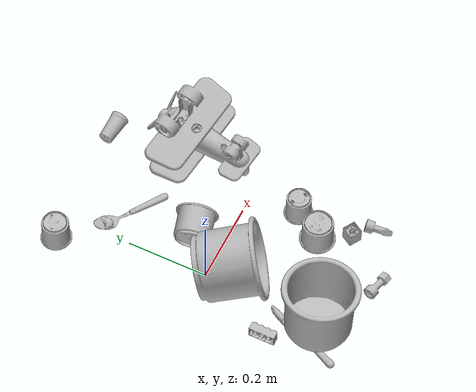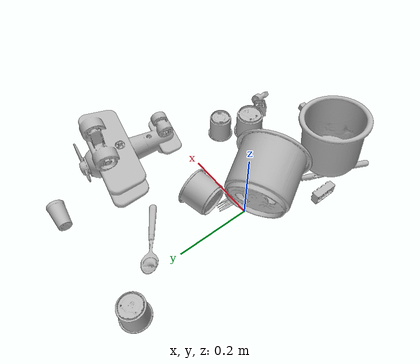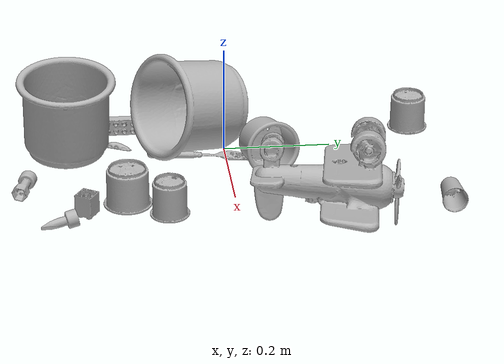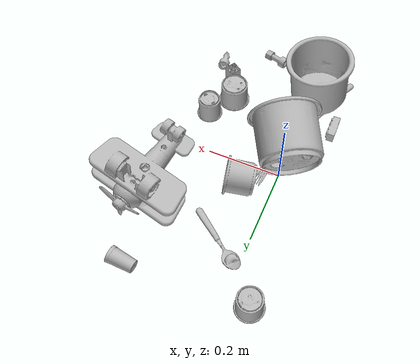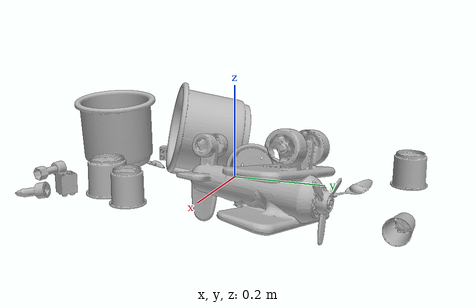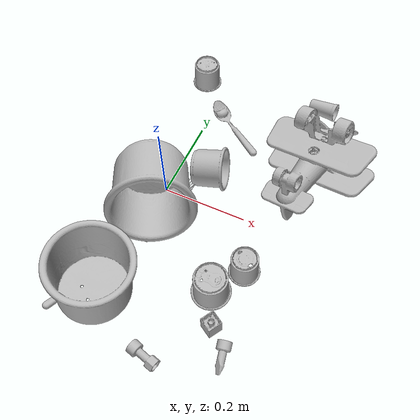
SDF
<sdf version="1.4">
  <world name="default">
    <light name="light1" type="point">
      <pose>0 0 1 0 0 0</pose>
      <diffuse>3 3 3 1</diffuse>
      <specular>3 3 3 1</specular>
    </light>
    <light name="light2" type="point">
      <pose>0 0.5 2 0 0 0</pose>
      <diffuse>1 1 1 1</diffuse>
      <specular>1 1 1 1</specular>
    </light>
    <light name="light3" type="point">
      <pose>0 0.5 2 0 0 0</pose>
      <diffuse>3 3 3 1</diffuse>
      <specular>3 3 3 1</specular>
    </light>
    <scene>
      <ambient>0.7 0.7 0.7</ambient>
    </scene>
    <model name="cup1">
      <link name="link_cup1">
        <collision name="default">
          <geometry>
            <mesh>
              <uri>model://d_cups/collision_meshes/collision.obj</uri>
              <scale>1.0 1.0 1.0</scale>
            </mesh>
          </geometry>
          <surface>
            <friction>
              <ode>
                <mu>0.5</mu>
                <mu2>0.5</mu2>
              </ode>
            </friction>
          <contact>
        <ode>
            <max_vel>0</max_vel>
            <min_depth>0.0001</min_depth>
            <kp>1e8</kp>
        </ode>
    </contact></surface>
        </collision>
        <visual name="default">
          <geometry>
            <mesh>
              <uri>model://d_cups/visual_meshes/visual.dae</uri>
              <scale>1.0 1.0 1.0</scale>
            </mesh>
          </geometry>
        </visual>
        <inertial>
          <mass>0.02583918906748295</mass>
          <pose>0.0008068039314821362 0.001911739120259881 -0.0022666507866233587 0.24011637128749466 -0.2471028358176743 0.5942765290496752</pose>
          <inertia>
            <ixx>2.1633481e-05</ixx>
            <iyy>2.1570875e-05</iyy>
            <izz>1.9581978e-05</izz>
            <ixy>0</ixy>
            <ixz>0</ixz>
            <iyz>0</iyz>
          </inertia>
        </inertial>
      </link>
      <pose>0.25356706976890564 -0.1207321286201477 0.034489043056964874 -3.1415925844150823 1.1045935714731804e-07 0.03815041691157113</pose>
    </model>
    <model name="silverware1">
      <link name="link_silverware1">
        <collision name="default">
          <geometry>
            <mesh>
              <uri>model://fork/collision_meshes/collision.obj</uri>
              <scale>1.0 1.0 1.0</scale>
            </mesh>
          </geometry>
          <surface>
            <friction>
              <ode>
                <mu>0.5</mu>
                <mu2>0.5</mu2>
              </ode>
            </friction>
          <contact>
        <ode>
            <max_vel>0</max_vel>
            <min_depth>0.0001</min_depth>
            <kp>1e8</kp>
        </ode>
    </contact></surface>
        </collision>
        <visual name="default">
          <geometry>
            <mesh>
              <uri>model://fork/visual_meshes/visual.dae</uri>
              <scale>1.0 1.0 1.0</scale>
            </mesh>
          </geometry>
        </visual>
        <inertial>
          <mass>0.019409121945500374</mass>
          <pose>-0.02957003004848957 0.00046588227269239724 0.0003218860365450382 -0.013551247621251511 -0.010977829980421018 0.014453895491116085</pose>
          <inertia>
            <ixx>6.8039935e-07</ixx>
            <iyy>5.0671635e-05</iyy>
            <izz>5.097597e-05</izz>
            <ixy>0</ixy>
            <ixz>0</ixz>
            <iyz>0</iyz>
          </inertia>
        </inertial>
      </link>
      <pose>0.03417261689901352 -0.04852315038442612 0.007466588169336319 -3.0564494965646913 0.0024867255677640645 1.4449140223659491</pose>
    </model>
    <model name="cup2">
      <link name="link_cup2">
        <collision name="default">
          <geometry>
            <mesh>
              <uri>model://e_cups/collision_meshes/collision.obj</uri>
              <scale>1.0 1.0 1.0</scale>
            </mesh>
          </geometry>
          <surface>
            <friction>
              <ode>
                <mu>0.5</mu>
                <mu2>0.5</mu2>
              </ode>
            </friction>
          <contact>
        <ode>
            <max_vel>0</max_vel>
            <min_depth>0.0001</min_depth>
            <kp>1e8</kp>
        </ode>
    </contact></surface>
        </collision>
        <visual name="default">
          <geometry>
            <mesh>
              <uri>model://e_cups/visual_meshes/visual.dae</uri>
              <scale>1.0 1.0 1.0</scale>
            </mesh>
          </geometry>
        </visual>
        <inertial>
          <mass>0.044056184589862823</mass>
          <pose>0.0011355748865753412 0.0028797839768230915 -0.0038829699624329805 0.6952404811842238 0.0876797234541652 -0.5235249298074676</pose>
          <inertia>
            <ixx>3.8846523e-05</ixx>
            <iyy>4.060018e-05</iyy>
            <izz>3.714177e-05</izz>
            <ixy>0</ixy>
            <ixz>0</ixz>
            <iyz>0</iyz>
          </inertia>
        </inertial>
      </link>
      <pose>-0.06153060495853424 0.36205992102622986 0.03560689836740494 3.1396969571821343 0.008252245408900176 0.12308820837378699</pose>
    </model>
    <model name="silverware2">
      <link name="link_silverware2">
        <collision name="default">
          <geometry>
            <mesh>
              <uri>model://knife/collision_meshes/collision.obj</uri>
              <scale>1.0 1.0 1.0</scale>
            </mesh>
          </geometry>
          <surface>
            <friction>
              <ode>
                <mu>0.5</mu>
                <mu2>0.5</mu2>
              </ode>
            </friction>
          <contact>
        <ode>
            <max_vel>0</max_vel>
            <min_depth>0.0001</min_depth>
            <kp>1e8</kp>
        </ode>
    </contact></surface>
        </collision>
        <visual name="default">
          <geometry>
            <mesh>
              <uri>model://knife/visual_meshes/visual.dae</uri>
              <scale>1.0 1.0 1.0</scale>
            </mesh>
          </geometry>
        </visual>
        <inertial>
          <mass>0.018338654190301895</mass>
          <pose>-0.02378525212407112 0.00152751209679991 5.062017953605391e-05 0.07305878484845407 0.017248414361503102 -0.007409825003193847</pose>
          <inertia>
            <ixx>5.2052525e-07</ixx>
            <iyy>7.045415e-05</iyy>
            <izz>7.062178e-05</izz>
            <ixy>0</ixy>
            <ixz>0</ixz>
            <iyz>0</iyz>
          </inertia>
        </inertial>
      </link>
      <pose>-0.0524384081363678 -0.2720654308795929 0.006001495756208897 3.014176916032006 0.03321998448416552 1.1662007052050238</pose>
    </model>
    <model name="cup3">
      <link name="link_cup3">
        <collision name="default">
          <geometry>
            <mesh>
              <uri>model://g_cups/collision_meshes/collision.obj</uri>
              <scale>1.0 1.0 1.0</scale>
            </mesh>
          </geometry>
          <surface>
            <friction>
              <ode>
                <mu>0.5</mu>
                <mu2>0.5</mu2>
              </ode>
            </friction>
          <contact>
        <ode>
            <max_vel>0</max_vel>
            <min_depth>0.0001</min_depth>
            <kp>1e8</kp>
        </ode>
    </contact></surface>
        </collision>
        <visual name="default">
          <geometry>
            <mesh>
              <uri>model://g_cups/visual_meshes/visual.dae</uri>
              <scale>1.0 1.0 1.0</scale>
            </mesh>
          </geometry>
        </visual>
        <inertial>
          <mass>0.07798270881175995</mass>
          <pose>-0.0007946274126879871 -4.206407902529463e-05 -0.0021329382434487343 -0.21383467808934026 -0.31409923984197585 0.31123390815877217</pose>
          <inertia>
            <ixx>9.102333e-05</ixx>
            <iyy>9.0713715e-05</iyy>
            <izz>9.428446e-05</izz>
            <ixy>0</ixy>
            <ixz>0</ixz>
            <iyz>0</iyz>
          </inertia>
        </inertial>
      </link>
      <pose>0.20759601891040802 -0.19174373149871826 0.03711602836847305 -3.1415926433583903 3.3622037787489135e-08 1.7080046378184364</pose>
    </model>
    <model name="silverware3">
      <link name="link_silverware3">
        <collision name="default">
          <geometry>
            <mesh>
              <uri>model://spoon/collision_meshes/collision.obj</uri>
              <scale>1.0 1.0 1.0</scale>
            </mesh>
          </geometry>
          <surface>
            <friction>
              <ode>
                <mu>0.5</mu>
                <mu2>0.5</mu2>
              </ode>
            </friction>
          <contact>
        <ode>
            <max_vel>0</max_vel>
            <min_depth>0.0001</min_depth>
            <kp>1e8</kp>
        </ode>
    </contact></surface>
        </collision>
        <visual name="default">
          <geometry>
            <mesh>
              <uri>model://spoon/visual_meshes/visual.dae</uri>
              <scale>1.0 1.0 1.0</scale>
            </mesh>
          </geometry>
        </visual>
        <inertial>
          <mass>0.03767607361078262</mass>
          <pose>-0.005526314023882151 -0.00160341733135283 -0.0007271650829352438 0.035216427360727776 -0.03906582911385382 0.006150613897789847</pose>
          <inertia>
            <ixx>2.095604e-06</ixx>
            <iyy>0.00014335623</iyy>
            <izz>0.00014438969</izz>
            <ixy>0</ixy>
            <ixz>0</ixz>
            <iyz>0</iyz>
          </inertia>
        </inertial>
      </link>
      <pose>0.07379467040300369 0.2332219034433365 0.008385264314711094 0.006729407746904596 0.026892993532570242 2.5160960264228946</pose>
    </model>
    <model name="cup4">
      <link name="link_cup4">
        <collision name="default">
          <geometry>
            <mesh>
              <uri>model://i_cups/collision_meshes/collision.obj</uri>
              <scale>2.0 2.0 2.0</scale>
            </mesh>
          </geometry>
          <surface>
            <friction>
              <ode>
                <mu>0.5</mu>
                <mu2>0.5</mu2>
              </ode>
            </friction>
          <contact>
        <ode>
            <max_vel>0</max_vel>
            <min_depth>0.0001</min_depth>
            <kp>1e8</kp>
        </ode>
    </contact></surface>
        </collision>
        <visual name="default">
          <geometry>
            <mesh>
              <uri>model://i_cups/visual_meshes/visual.dae</uri>
              <scale>2.0 2.0 2.0</scale>
            </mesh>
          </geometry>
        </visual>
        <inertial>
          <mass>0.5538490414619446</mass>
          <pose>0.00022480632469523698 0.00033594807609915733 -0.0017158057307824492 -0.028982964625507153 -0.039873324075769 -0.3459146585522926</pose>
          <inertia>
            <ixx>0.003067248</ixx>
            <iyy>0.003094273</iyy>
            <izz>0.0034281453</izz>
            <ixy>0</ixy>
            <ixz>0</ixz>
            <iyz>0</iyz>
          </inertia>
        </inertial>
      </link>
      <pose>0.0030742106027901173 -0.060017142444849014 0.09377437829971313 1.2551009486274267 0.8244735976013436 0.2790624339089268</pose>
    </model>
    <model name="cup41">
      <link name="link_cup41">
        <collision name="default">
          <geometry>
            <mesh>
              <uri>model://cup_small/collision_meshes/collision.obj</uri>
              <scale>1.0 1.0 1.0</scale>
            </mesh>
          </geometry>
          <surface>
            <friction>
              <ode>
                <mu>0.5</mu>
                <mu2>0.5</mu2>
              </ode>
            </friction>
          <contact>
        <ode>
            <max_vel>0</max_vel>
            <min_depth>0.0001</min_depth>
            <kp>1e8</kp>
        </ode>
    </contact></surface>
        </collision>
        <visual name="default">
          <geometry>
            <mesh>
              <uri>model://cup_small/visual_meshes/visual.dae</uri>
              <scale>1.0 1.0 1.0</scale>
            </mesh>
          </geometry>
        </visual>
        <inertial>
          <mass>0.014494861476123333</mass>
          <pose>0.000104824714071583 -0.0003377838584128767 -0.010742826387286186 -0.01149312034772668 -0.015280288652376739 -0.5058210166411498</pose>
          <inertia>
            <ixx>8.534352e-06</ixx>
            <iyy>8.578376e-06</iyy>
            <izz>3.853286e-06</izz>
            <ixy>0</ixy>
            <ixz>0</ixz>
            <iyz>0</iyz>
          </inertia>
        </inertial>
      </link>
      <pose>0.2624567747116089 0.3805413246154785 0.020275354385375977 1.337737763930497 -1.2101412198617056 1.7130433911214114</pose>
    </model>
    <model name="cup5">
      <link name="link_cup5">
        <collision name="default">
          <geometry>
            <mesh>
              <uri>model://h_cups/collision_meshes/collision.obj</uri>
              <scale>2.0 2.0 2.0</scale>
            </mesh>
          </geometry>
          <surface>
            <friction>
              <ode>
                <mu>0.5</mu>
                <mu2>0.5</mu2>
              </ode>
            </friction>
          <contact>
        <ode>
            <max_vel>0</max_vel>
            <min_depth>0.0001</min_depth>
            <kp>1e8</kp>
        </ode>
    </contact></surface>
        </collision>
        <visual name="default">
          <geometry>
            <mesh>
              <uri>model://h_cups/visual_meshes/visual.dae</uri>
              <scale>2.0 2.0 2.0</scale>
            </mesh>
          </geometry>
        </visual>
        <inertial>
          <mass>0.5365790128707886</mass>
          <pose>-5.406028139987029e-05 0.00046037189895287156 -0.0036810787860304117 -0.02436222281077587 0.06545240855648493 0.12885003891433794</pose>
          <inertia>
            <ixx>0.002771868</ixx>
            <iyy>0.0027387904</iyy>
            <izz>0.0029069292</izz>
            <ixy>0</ixy>
            <ixz>0</ixz>
            <iyz>0</iyz>
          </inertia>
        </inertial>
      </link>
      <pose>-0.006286976393312216 -0.2933560907840729 0.08220040053129196 0.06375746917482016 0.08533406792321611 0.8343551495642494</pose>
    </model>
    <model name="cup51">
      <link name="link_cup51">
        <collision name="default">
          <geometry>
            <mesh>
              <uri>model://j_cups/collision_meshes/collision.obj</uri>
              <scale>1.0 1.0 1.0</scale>
            </mesh>
          </geometry>
          <surface>
            <friction>
              <ode>
                <mu>0.5</mu>
                <mu2>0.5</mu2>
              </ode>
            </friction>
          <contact>
        <ode>
            <max_vel>0</max_vel>
            <min_depth>0.0001</min_depth>
            <kp>1e8</kp>
        </ode>
    </contact></surface>
        </collision>
        <visual name="default">
          <geometry>
            <mesh>
              <uri>model://j_cups/visual_meshes/visual.dae</uri>
              <scale>1.0 1.0 1.0</scale>
            </mesh>
          </geometry>
        </visual>
        <inertial>
          <mass>0.08643309026956558</mass>
          <pose>0.0006164878141134977 0.000539897009730339 -0.0013479007175192237 0.030303582878034346 0.03757999590477698 0.4386876701083768</pose>
          <inertia>
            <ixx>0.00012691108</ixx>
            <iyy>0.00012823076</iyy>
            <izz>0.00014630218</izz>
            <ixy>0</ixy>
            <ixz>0</ixz>
            <iyz>0</iyz>
          </inertia>
        </inertial>
      </link>
      <pose>0.08335375040769577 0.07039269059896469 0.04714825004339218 -1.4234936964941378 0.5584226132838527 -1.2430399346184502</pose>
    </model>
    <model name="toy1">
      <link name="link_toy1">
        <collision name="default">
          <geometry>
            <mesh>
              <uri>model://f_lego_duplo/collision_meshes/collision.obj</uri>
              <scale>1.0 1.0 1.0</scale>
            </mesh>
          </geometry>
          <surface>
            <friction>
              <ode>
                <mu>0.5</mu>
                <mu2>0.5</mu2>
              </ode>
            </friction>
          <contact>
        <ode>
            <max_vel>0</max_vel>
            <min_depth>0.0001</min_depth>
            <kp>1e8</kp>
        </ode>
    </contact></surface>
        </collision>
        <visual name="default">
          <geometry>
            <mesh>
              <uri>model://f_lego_duplo/visual_meshes/visual.dae</uri>
              <scale>1.0 1.0 1.0</scale>
            </mesh>
          </geometry>
        </visual>
        <inertial>
          <mass>0.03726755082607269</mass>
          <pose>2.3694148694630712e-05 0.00013393144763540477 0.0018837880343198776 0.029838475432906467 -0.014425202105620092 -0.6756589304715467</pose>
          <inertia>
            <ixx>7.874838e-06</ixx>
            <iyy>7.944995e-06</iyy>
            <izz>6.8356926e-06</izz>
            <ixy>0</ixy>
            <ixz>0</ixz>
            <iyz>0</iyz>
          </inertia>
        </inertial>
      </link>
      <pose>0.24237915873527527 -0.2647935450077057 0.02187102846801281 -3.1415922955824387 2.0209502379945993e-08 1.0286463229047436</pose>
    </model>
    <model name="toy2">
      <link name="link_toy2">
        <collision name="default">
          <geometry>
            <mesh>
              <uri>model://a_toy_airplane/collision_meshes/collision.obj</uri>
              <scale>1.0 1.0 1.0</scale>
            </mesh>
          </geometry>
          <surface>
            <friction>
              <ode>
                <mu>0.5</mu>
                <mu2>0.5</mu2>
              </ode>
            </friction>
          <contact>
        <ode>
            <max_vel>0</max_vel>
            <min_depth>0.0001</min_depth>
            <kp>1e8</kp>
        </ode>
    </contact></surface>
        </collision>
        <visual name="default">
          <geometry>
            <mesh>
              <uri>model://a_toy_airplane/visual_meshes/visual.dae</uri>
              <scale>1.0 1.0 1.0</scale>
            </mesh>
          </geometry>
        </visual>
        <inertial>
          <mass>2.8230273723602295</mass>
          <pose>0.025165094062685966 -0.003707324154675007 -0.0011962448479607701 -0.012016973205606891 -0.14663498091084715 0.004149146833454428</pose>
          <inertia>
            <ixx>0.010251767</ixx>
            <iyy>0.014938904</iyy>
            <izz>0.017491622</izz>
            <ixy>0</ixy>
            <ixz>0</ixz>
            <iyz>0</iyz>
          </inertia>
        </inertial>
      </link>
      <pose>0.30302301049232483 0.14862047135829926 0.07449771463871002 2.9566173387509975 -0.14478538029520527 1.4232760468421721</pose>
    </model>
    <model name="toy3">
      <link name="link_toy3">
        <collision name="default">
          <geometry>
            <mesh>
              <uri>model://e_toy_airplane/collision_meshes/collision.obj</uri>
              <scale>1.0 1.0 1.0</scale>
            </mesh>
          </geometry>
          <surface>
            <friction>
              <ode>
                <mu>0.5</mu>
                <mu2>0.5</mu2>
              </ode>
            </friction>
          <contact>
        <ode>
            <max_vel>0</max_vel>
            <min_depth>0.0001</min_depth>
            <kp>1e8</kp>
        </ode>
    </contact></surface>
        </collision>
        <visual name="default">
          <geometry>
            <mesh>
              <uri>model://e_toy_airplane/visual_meshes/visual.dae</uri>
              <scale>1.0 1.0 1.0</scale>
            </mesh>
          </geometry>
        </visual>
        <inertial>
          <mass>0.018226178362965584</mass>
          <pose>0.00011740501213353127 -2.2482903659692965e-05 -0.011187204159796238 0.005518473613481416 0.009228340672948143 0.1504115676354622</pose>
          <inertia>
            <ixx>5.5628384e-06</ixx>
            <iyy>5.505933e-06</iyy>
            <izz>1.6718515e-06</izz>
            <ixy>0</ixy>
            <ixz>0</ixz>
            <iyz>0</iyz>
          </inertia>
        </inertial>
      </link>
      <pose>0.2873724102973938 -0.314414918422699 0.012516820803284645 1.857326121932679 0.8696479054536495 0.4098214397736924</pose>
    </model>
    <model name="toy4">
      <link name="link_toy4">
        <collision name="default">
          <geometry>
            <mesh>
              <uri>model://c_toy_airplane/collision_meshes/collision.obj</uri>
              <scale>1.0 1.0 1.0</scale>
            </mesh>
          </geometry>
          <surface>
            <friction>
              <ode>
                <mu>0.5</mu>
                <mu2>0.5</mu2>
              </ode>
            </friction>
          <contact>
        <ode>
            <max_vel>0</max_vel>
            <min_depth>0.0001</min_depth>
            <kp>1e8</kp>
        </ode>
    </contact></surface>
        </collision>
        <visual name="default">
          <geometry>
            <mesh>
              <uri>model://c_toy_airplane/visual_meshes/visual.dae</uri>
              <scale>1.0 1.0 1.0</scale>
            </mesh>
          </geometry>
        </visual>
        <inertial>
          <mass>0.025432955473661423</mass>
          <pose>-0.00023024249821901321 -4.429159048413567e-07 -0.006080531049519777 -0.006192114712999555 -0.016797950833505656 0.7654545807195076</pose>
          <inertia>
            <ixx>1.1678292e-05</ixx>
            <iyy>1.1645335e-05</iyy>
            <izz>2.7418316e-06</izz>
            <ixy>0</ixy>
            <ixz>0</ixz>
            <iyz>0</iyz>
          </inertia>
        </inertial>
      </link>
      <pose>0.14572705328464508 -0.374210923910141 0.014693135395646095 1.5894868533182347 -0.09920824334802464 1.3152229000406501</pose>
    </model>
    <model name="toy5">
      <link name="link_toy5">
        <collision name="default">
          <geometry>
            <mesh>
              <uri>model://c_lego_duplo/collision_meshes/collision.obj</uri>
              <scale>1.0 1.0 1.0</scale>
            </mesh>
          </geometry>
          <surface>
            <friction>
              <ode>
                <mu>0.5</mu>
                <mu2>0.5</mu2>
              </ode>
            </friction>
          <contact>
        <ode>
            <max_vel>0</max_vel>
            <min_depth>0.0001</min_depth>
            <kp>1e8</kp>
        </ode>
    </contact></surface>
        </collision>
        <visual name="default">
          <geometry>
            <mesh>
              <uri>model://c_lego_duplo/visual_meshes/visual.dae</uri>
              <scale>1.0 1.0 1.0</scale>
            </mesh>
          </geometry>
        </visual>
        <inertial>
          <mass>0.03308485820889473</mass>
          <pose>0.00031645988929085433 0.00019464598153717816 0.0010453154100105166 -0.011520788894510418 0.005900092683279709 0.031100331745055027</pose>
          <inertia>
            <ixx>1.2731672e-05</ixx>
            <iyy>4.066954e-06</iyy>
            <izz>1.4878268e-05</izz>
            <ixy>0</ixy>
            <ixz>0</ixz>
            <iyz>0</iyz>
          </inertia>
        </inertial>
      </link>
      <pose>-0.08756860345602036 -0.19189773499965668 0.016402948647737503 -1.4159851884935073 1.5444072523536383 -1.4102764332603774</pose>
    </model>
  <physics type="ode">
      <max_contacts>50</max_contacts>
      <ode>
        <solver>
          <type>quick</type>
          <iters>75</iters>
        </solver>
        <constraints>
          <contact_max_correcting_vel>0</contact_max_correcting_vel>
          <contact_surface_layer>0</contact_surface_layer>
        </constraints>
      </ode>
    </physics></world>
</sdf>
